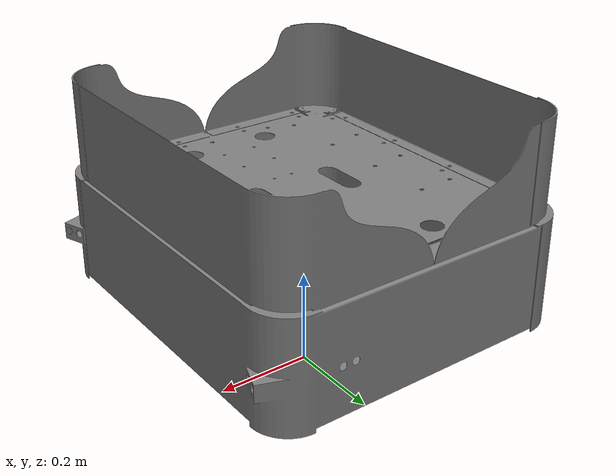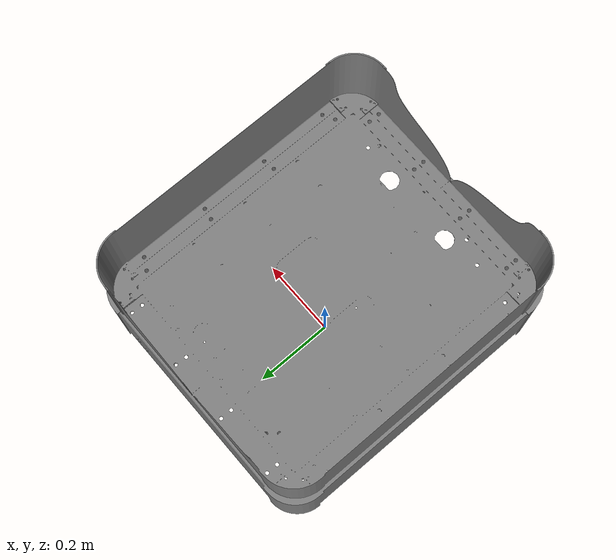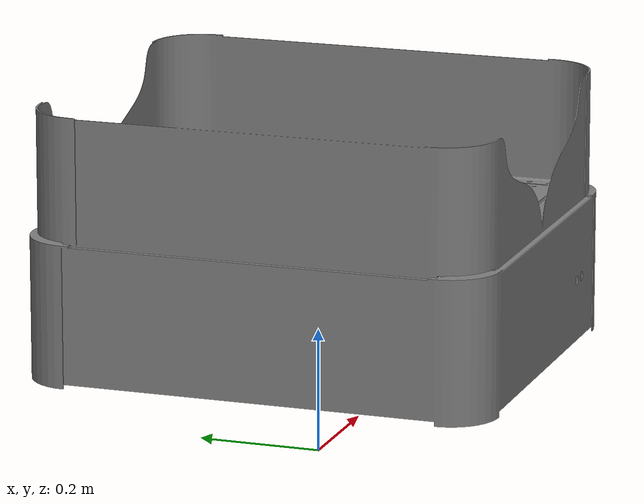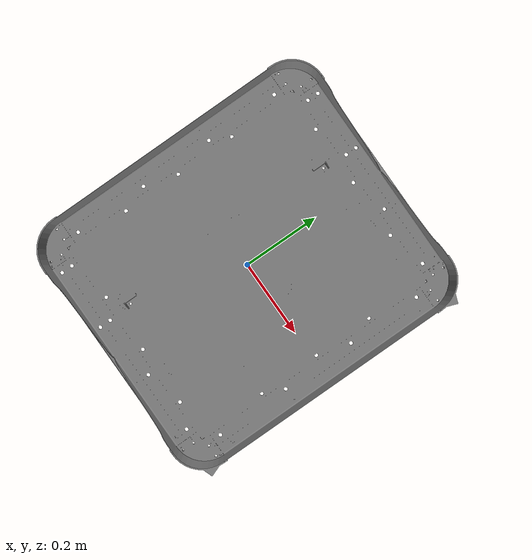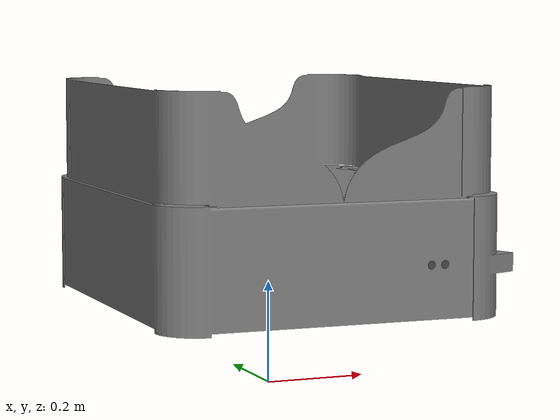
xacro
<?xml version="1.0"?>
<robot xmlns:xacro="http://www.ros.org/wiki/xacro" name="robot">

    <!-- Connect odom to base_footprint with a dummy joint -->

    <!-- Base Footprint -->
    <link name="base_footprint"/>

    <!-- Base Footprint joint-->
    <joint name="base_footprint_joint" type="fixed">
      <parent link="base_footprint"/>
      <child link="base_link"/>
      <origin xyz="0 0 0.17" rpy="0 0 0"/>
    </joint>

  <!-- Base Link -->
  <link name="base_link">
    <inertial>
      <origin xyz="-0.00452130877244294 0.000150301465874941 0.15093105096812" rpy="0 0 0"/>
      <mass value="16.2039900136431"/>
      <inertia ixx="0.34969422706627" ixy="0.000180371273532384" ixz="0.000694701009576337"
               iyy="0.234584840003601" iyz="4.43498030488043E-06" izz="0.516516918964778"/>
    </inertial>
    <visual>
      <origin xyz="0 0 0" rpy="0 0 0"/>
      <geometry>
        <mesh filename="package://warehouse_description/meshes/base_link.STL"/>
      </geometry>
      <material name="dark_grey">
        <color rgba="0.501960784313725 0.501960784313725 0.501960784313725 1"/>
      </material>
    </visual>
    <collision>
      <origin xyz="0 0 0" rpy="0 0 0"/>
      <geometry>
        <mesh filename="package://warehouse_description/meshes/base_link.STL"/>
      </geometry>
    </collision>
  </link>

</robot>
